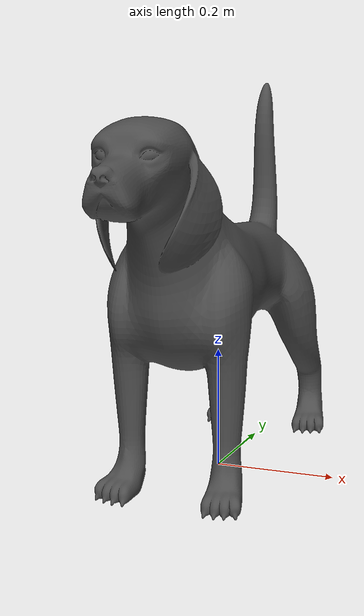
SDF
<?xml version="1.0" ?>
<sdf version="1.6">
  <model name="extra_dog_beagle">
    <static>true</static>
    <link name="link">
      <visual name="visual">
        <geometry>
          <mesh>
            <scale>0.1 0.1 0.1</scale>
            <uri>model://extra_dog_beagle/meshes/Beagle.stl</uri>
          </mesh>
  	</geometry>
	<material>
	  <script>
	    <uri>file://media/materials/scipts/gazebo.material</uri>
	    <name>Gazebo/DarkGrey</name>
	  </script>
	</material>
      </visual>
    </link>
  </model>
</sdf>
